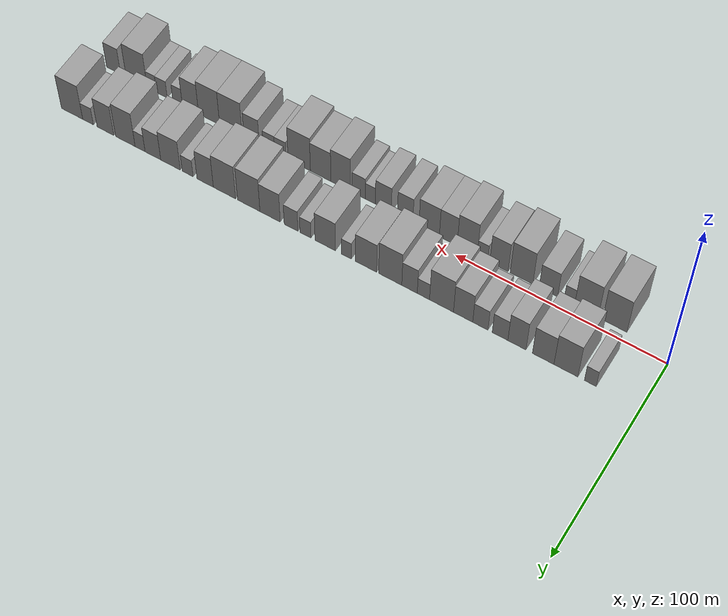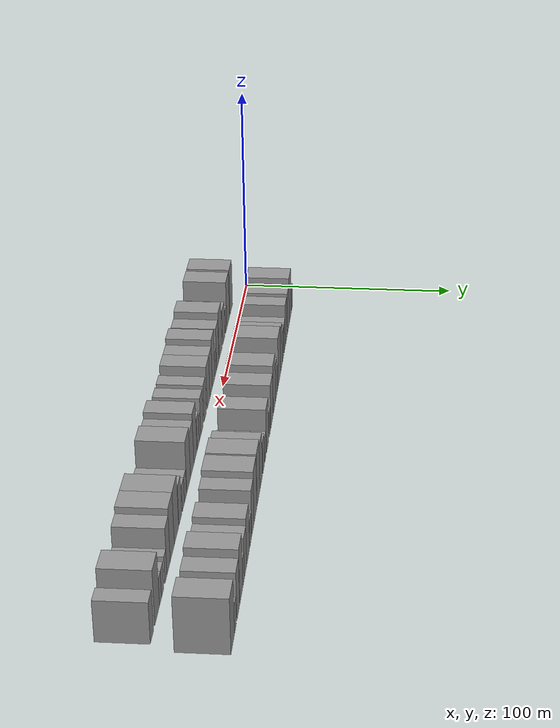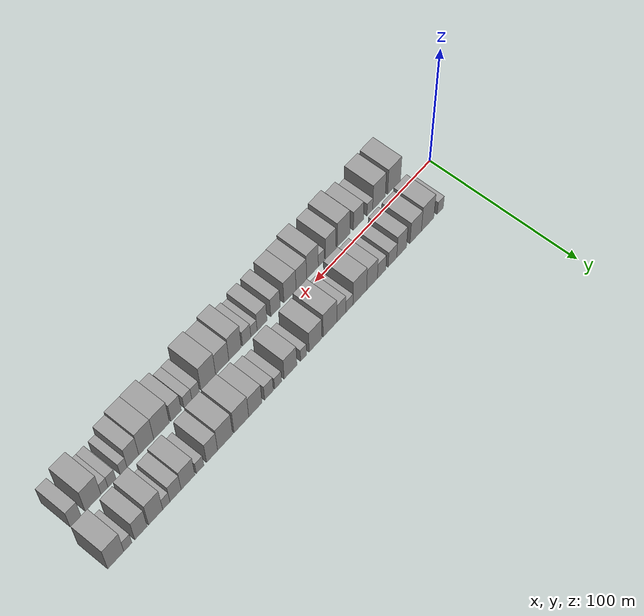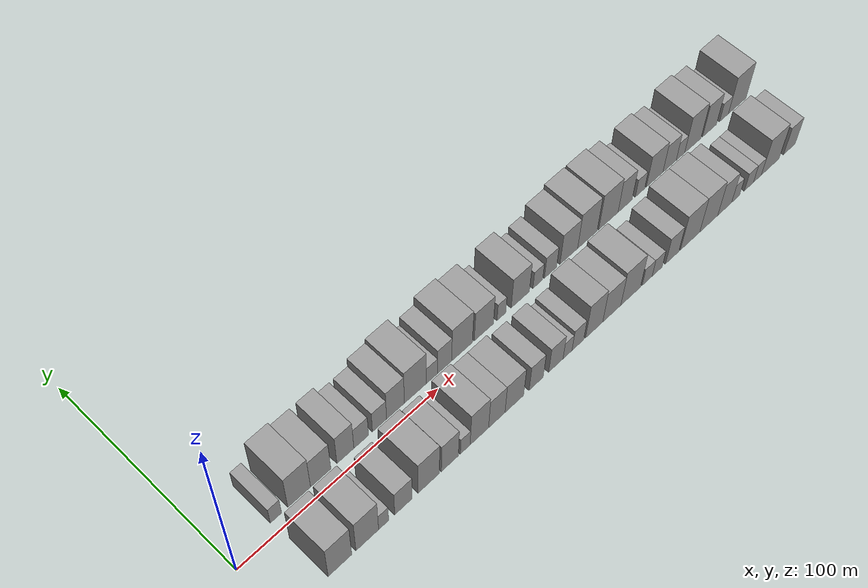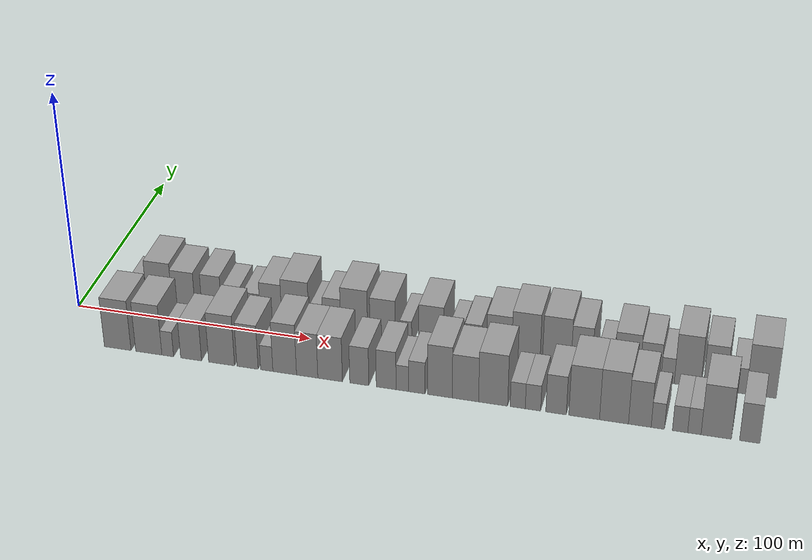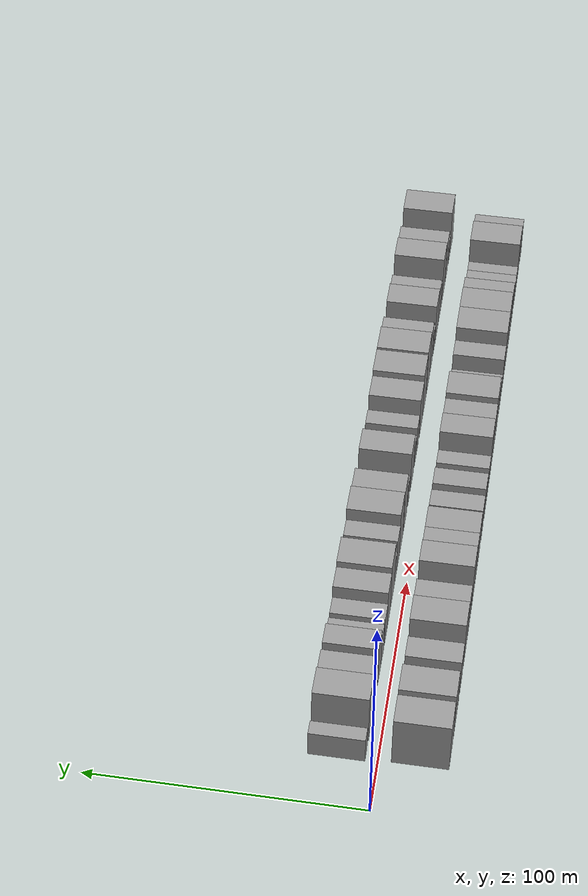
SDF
<sdf version="1.6">
 <world name="default">
  <scene>
   <sky><clouds><speed>12</speed></clouds></sky>
   <ambient>0.4 0.4 0.4 1</ambient>
   <background>0.7 0.7 0.7 1</background>
   <shadows>1</shadows>
  </scene>
  <gravity>0 0 -9.8066</gravity>
  <magnetic_field>6e-06 2.3e-05 -4.2e-05</magnetic_field>
  <physics default="0" name="default_physics" type="ode">
   <ode>
    <solver>
     <type>quick</type>
     <iters>10</iters>
     <sor>1.0</sor>
     <use_dynamic_moi_rescaling>0</use_dynamic_moi_rescaling>
    </solver>
    <constraints>
     <cfm>0</cfm>
     <erp>0.2</erp>
     <contact_max_correcting_vel>100</contact_max_correcting_vel>
     <contact_surface_layer>0.001</contact_surface_layer>
    </constraints>
   </ode>
   <max_step_size>0.004</max_step_size>
   <real_time_factor>1</real_time_factor>
   <real_time_update_rate>250</real_time_update_rate>
  </physics>
  <light name="sun" type="directional">
   <pose>0 0 10 0 0 0</pose>
   <diffuse>0.8 0.8 0.8 1</diffuse>
   <specular>0.2 0.2 0.2 1</specular>
   <attenuation>
    <range>1000</range>
    <constant>0.9</constant>
    <linear>0.01</linear>
    <quadratic>0.001</quadratic>
   </attenuation>
   <direction>-0.5 0.1 -0.9</direction>
  </light>
  <model name="building_1">
   <static>1</static>
   <pose>22.7182 14.5000 0 0.000000 0.000000 1.570796</pose>
   <link name="link">
    <pose>0 0 6.00 0 0 0</pose>
    <collision name="collision"><geometry><box><size>20.0000 5.4364 12.0000</size></box></geometry></collision>
    <visual name="visual">
     <cast_shadows>0</cast_shadows>
     <geometry><box><size>20.0000 5.4364 12.0000</size></box></geometry>
     <material>
      <script>
       <uri>model://grey_wall/materials/scripts</uri>
       <uri>model://grey_wall/materials/textures</uri>
       <name>vrc/grey_wall</name>
      </script>
     </material>
    </visual>
   </link>
  </model>
  <model name="building_2">
   <static>1</static>
   <pose>33.9652 14.5000 0 0.000000 0.000000 1.570796</pose>
   <link name="link">
    <pose>0 0 12.00 0 0 0</pose>
    <collision name="collision"><geometry><box><size>20.0000 11.0575 24.0000</size></box></geometry></collision>
    <visual name="visual">
     <cast_shadows>0</cast_shadows>
     <geometry><box><size>20.0000 11.0575 24.0000</size></box></geometry>
     <material>
      <script>
       <uri>model://grey_wall/materials/scripts</uri>
       <uri>model://grey_wall/materials/textures</uri>
       <name>vrc/grey_wall</name>
      </script>
     </material>
    </visual>
   </link>
  </model>
  <model name="building_3">
   <static>1</static>
   <pose>44.5014 14.5000 0 0.000000 0.000000 1.570796</pose>
   <link name="link">
    <pose>0 0 10.50 0 0 0</pose>
    <collision name="collision"><geometry><box><size>20.0000 10.0150 21.0000</size></box></geometry></collision>
    <visual name="visual">
     <cast_shadows>0</cast_shadows>
     <geometry><box><size>20.0000 10.0150 21.0000</size></box></geometry>
     <material>
      <script>
       <uri>model://grey_wall/materials/scripts</uri>
       <uri>model://grey_wall/materials/textures</uri>
       <name>vrc/grey_wall</name>
      </script>
     </material>
    </visual>
   </link>
  </model>
  <model name="building_4">
   <static>1</static>
   <pose>56.7607 14.5000 0 0.000000 0.000000 1.570796</pose>
   <link name="link">
    <pose>0 0 10.50 0 0 0</pose>
    <collision name="collision"><geometry><box><size>20.0000 8.5036 21.0000</size></box></geometry></collision>
    <visual name="visual">
     <cast_shadows>0</cast_shadows>
     <geometry><box><size>20.0000 8.5036 21.0000</size></box></geometry>
     <material>
      <script>
       <uri>model://grey_wall/materials/scripts</uri>
       <uri>model://grey_wall/materials/textures</uri>
       <name>vrc/grey_wall</name>
      </script>
     </material>
    </visual>
   </link>
  </model>
  <model name="building_5">
   <static>1</static>
   <pose>64.6994 14.5000 0 0.000000 0.000000 1.570796</pose>
   <link name="link">
    <pose>0 0 7.50 0 0 0</pose>
    <collision name="collision"><geometry><box><size>20.0000 7.3737 15.0000</size></box></geometry></collision>
    <visual name="visual">
     <cast_shadows>0</cast_shadows>
     <geometry><box><size>20.0000 7.3737 15.0000</size></box></geometry>
     <material>
      <script>
       <uri>model://grey_wall/materials/scripts</uri>
       <uri>model://grey_wall/materials/textures</uri>
       <name>vrc/grey_wall</name>
      </script>
     </material>
    </visual>
   </link>
  </model>
  <model name="building_6">
   <static>1</static>
   <pose>74.0015 14.5000 0 0.000000 0.000000 1.570796</pose>
   <link name="link">
    <pose>0 0 7.50 0 0 0</pose>
    <collision name="collision"><geometry><box><size>20.0000 7.2305 15.0000</size></box></geometry></collision>
    <visual name="visual">
     <cast_shadows>0</cast_shadows>
     <geometry><box><size>20.0000 7.2305 15.0000</size></box></geometry>
     <material>
      <script>
       <uri>model://grey_wall/materials/scripts</uri>
       <uri>model://grey_wall/materials/textures</uri>
       <name>vrc/grey_wall</name>
      </script>
     </material>
    </visual>
   </link>
  </model>
  <model name="building_7">
   <static>1</static>
   <pose>82.2014 14.5000 0 0.000000 0.000000 1.570796</pose>
   <link name="link">
    <pose>0 0 10.50 0 0 0</pose>
    <collision name="collision"><geometry><box><size>20.0000 9.1692 21.0000</size></box></geometry></collision>
    <visual name="visual">
     <cast_shadows>0</cast_shadows>
     <geometry><box><size>20.0000 9.1692 21.0000</size></box></geometry>
     <material>
      <script>
       <uri>model://grey_wall/materials/scripts</uri>
       <uri>model://grey_wall/materials/textures</uri>
       <name>vrc/grey_wall</name>
      </script>
     </material>
    </visual>
   </link>
  </model>
  <model name="building_8">
   <static>1</static>
   <pose>92.5418 14.5000 0 0.000000 0.000000 1.570796</pose>
   <link name="link">
    <pose>0 0 12.00 0 0 0</pose>
    <collision name="collision"><geometry><box><size>20.0000 11.5117 24.0000</size></box></geometry></collision>
    <visual name="visual">
     <cast_shadows>0</cast_shadows>
     <geometry><box><size>20.0000 11.5117 24.0000</size></box></geometry>
     <material>
      <script>
       <uri>model://grey_wall/materials/scripts</uri>
       <uri>model://grey_wall/materials/textures</uri>
       <name>vrc/grey_wall</name>
      </script>
     </material>
    </visual>
   </link>
  </model>
  <model name="building_9">
   <static>1</static>
   <pose>101.2591 14.5000 0 0.000000 0.000000 1.570796</pose>
   <link name="link">
    <pose>0 0 6.00 0 0 0</pose>
    <collision name="collision"><geometry><box><size>20.0000 5.9228 12.0000</size></box></geometry></collision>
    <visual name="visual">
     <cast_shadows>0</cast_shadows>
     <geometry><box><size>20.0000 5.9228 12.0000</size></box></geometry>
     <material>
      <script>
       <uri>model://grey_wall/materials/scripts</uri>
       <uri>model://grey_wall/materials/textures</uri>
       <name>vrc/grey_wall</name>
      </script>
     </material>
    </visual>
   </link>
  </model>
  <model name="building_10">
   <static>1</static>
   <pose>107.9694 14.5000 0 0.000000 0.000000 1.570796</pose>
   <link name="link">
    <pose>0 0 9.00 0 0 0</pose>
    <collision name="collision"><geometry><box><size>20.0000 7.4978 18.0000</size></box></geometry></collision>
    <visual name="visual">
     <cast_shadows>0</cast_shadows>
     <geometry><box><size>20.0000 7.4978 18.0000</size></box></geometry>
     <material>
      <script>
       <uri>model://grey_wall/materials/scripts</uri>
       <uri>model://grey_wall/materials/textures</uri>
       <name>vrc/grey_wall</name>
      </script>
     </material>
    </visual>
   </link>
  </model>
  <model name="building_11">
   <static>1</static>
   <pose>117.3433 14.5000 0 0.000000 0.000000 1.570796</pose>
   <link name="link">
    <pose>0 0 12.00 0 0 0</pose>
    <collision name="collision"><geometry><box><size>20.0000 11.2500 24.0000</size></box></geometry></collision>
    <visual name="visual">
     <cast_shadows>0</cast_shadows>
     <geometry><box><size>20.0000 11.2500 24.0000</size></box></geometry>
     <material>
      <script>
       <uri>model://grey_wall/materials/scripts</uri>
       <uri>model://grey_wall/materials/textures</uri>
       <name>vrc/grey_wall</name>
      </script>
     </material>
    </visual>
   </link>
  </model>
  <model name="building_12">
   <static>1</static>
   <pose>129.1996 14.5000 0 0.000000 0.000000 1.570796</pose>
   <link name="link">
    <pose>0 0 10.50 0 0 0</pose>
    <collision name="collision"><geometry><box><size>20.0000 10.4627 21.0000</size></box></geometry></collision>
    <visual name="visual">
     <cast_shadows>0</cast_shadows>
     <geometry><box><size>20.0000 10.4627 21.0000</size></box></geometry>
     <material>
      <script>
       <uri>model://grey_wall/materials/scripts</uri>
       <uri>model://grey_wall/materials/textures</uri>
       <name>vrc/grey_wall</name>
      </script>
     </material>
    </visual>
   </link>
  </model>
  <model name="building_13">
   <static>1</static>
   <pose>138.8574 14.5000 0 0.000000 0.000000 1.570796</pose>
   <link name="link">
    <pose>0 0 6.00 0 0 0</pose>
    <collision name="collision"><geometry><box><size>20.0000 4.8530 12.0000</size></box></geometry></collision>
    <visual name="visual">
     <cast_shadows>0</cast_shadows>
     <geometry><box><size>20.0000 4.8530 12.0000</size></box></geometry>
     <material>
      <script>
       <uri>model://grey_wall/materials/scripts</uri>
       <uri>model://grey_wall/materials/textures</uri>
       <name>vrc/grey_wall</name>
      </script>
     </material>
    </visual>
   </link>
  </model>
  <model name="building_14">
   <static>1</static>
   <pose>149.3889 14.5000 0 0.000000 0.000000 1.570796</pose>
   <link name="link">
    <pose>0 0 10.50 0 0 0</pose>
    <collision name="collision"><geometry><box><size>20.0000 10.2101 21.0000</size></box></geometry></collision>
    <visual name="visual">
     <cast_shadows>0</cast_shadows>
     <geometry><box><size>20.0000 10.2101 21.0000</size></box></geometry>
     <material>
      <script>
       <uri>model://grey_wall/materials/scripts</uri>
       <uri>model://grey_wall/materials/textures</uri>
       <name>vrc/grey_wall</name>
      </script>
     </material>
    </visual>
   </link>
  </model>
  <model name="building_15">
   <static>1</static>
   <pose>159.2584 14.5000 0 0.000000 0.000000 1.570796</pose>
   <link name="link">
    <pose>0 0 6.00 0 0 0</pose>
    <collision name="collision"><geometry><box><size>20.0000 5.5288 12.0000</size></box></geometry></collision>
    <visual name="visual">
     <cast_shadows>0</cast_shadows>
     <geometry><box><size>20.0000 5.5288 12.0000</size></box></geometry>
     <material>
      <script>
       <uri>model://grey_wall/materials/scripts</uri>
       <uri>model://grey_wall/materials/textures</uri>
       <name>vrc/grey_wall</name>
      </script>
     </material>
    </visual>
   </link>
  </model>
  <model name="building_16">
   <static>1</static>
   <pose>166.4911 14.5000 0 0.000000 0.000000 1.570796</pose>
   <link name="link">
    <pose>0 0 7.50 0 0 0</pose>
    <collision name="collision"><geometry><box><size>20.0000 6.9366 15.0000</size></box></geometry></collision>
    <visual name="visual">
     <cast_shadows>0</cast_shadows>
     <geometry><box><size>20.0000 6.9366 15.0000</size></box></geometry>
     <material>
      <script>
       <uri>model://grey_wall/materials/scripts</uri>
       <uri>model://grey_wall/materials/textures</uri>
       <name>vrc/grey_wall</name>
      </script>
     </material>
    </visual>
   </link>
  </model>
  <model name="building_17">
   <static>1</static>
   <pose>177.1055 14.5000 0 0.000000 0.000000 1.570796</pose>
   <link name="link">
    <pose>0 0 10.50 0 0 0</pose>
    <collision name="collision"><geometry><box><size>20.0000 10.2922 21.0000</size></box></geometry></collision>
    <visual name="visual">
     <cast_shadows>0</cast_shadows>
     <geometry><box><size>20.0000 10.2922 21.0000</size></box></geometry>
     <material>
      <script>
       <uri>model://grey_wall/materials/scripts</uri>
       <uri>model://grey_wall/materials/textures</uri>
       <name>vrc/grey_wall</name>
      </script>
     </material>
    </visual>
   </link>
  </model>
  <model name="building_18">
   <static>1</static>
   <pose>187.9631 14.5000 0 0.000000 0.000000 1.570796</pose>
   <link name="link">
    <pose>0 0 12.00 0 0 0</pose>
    <collision name="collision"><geometry><box><size>20.0000 11.4230 24.0000</size></box></geometry></collision>
    <visual name="visual">
     <cast_shadows>0</cast_shadows>
     <geometry><box><size>20.0000 11.4230 24.0000</size></box></geometry>
     <material>
      <script>
       <uri>model://grey_wall/materials/scripts</uri>
       <uri>model://grey_wall/materials/textures</uri>
       <name>vrc/grey_wall</name>
      </script>
     </material>
    </visual>
   </link>
  </model>
  <model name="building_19">
   <static>1</static>
   <pose>200.4035 14.5000 0 0.000000 0.000000 1.570796</pose>
   <link name="link">
    <pose>0 0 12.00 0 0 0</pose>
    <collision name="collision"><geometry><box><size>20.0000 11.4579 24.0000</size></box></geometry></collision>
    <visual name="visual">
     <cast_shadows>0</cast_shadows>
     <geometry><box><size>20.0000 11.4579 24.0000</size></box></geometry>
     <material>
      <script>
       <uri>model://grey_wall/materials/scripts</uri>
       <uri>model://grey_wall/materials/textures</uri>
       <name>vrc/grey_wall</name>
      </script>
     </material>
    </visual>
   </link>
  </model>
  <model name="building_20">
   <static>1</static>
   <pose>210.3536 14.5000 0 0.000000 0.000000 1.570796</pose>
   <link name="link">
    <pose>0 0 10.50 0 0 0</pose>
    <collision name="collision"><geometry><box><size>20.0000 8.4423 21.0000</size></box></geometry></collision>
    <visual name="visual">
     <cast_shadows>0</cast_shadows>
     <geometry><box><size>20.0000 8.4423 21.0000</size></box></geometry>
     <material>
      <script>
       <uri>model://grey_wall/materials/scripts</uri>
       <uri>model://grey_wall/materials/textures</uri>
       <name>vrc/grey_wall</name>
      </script>
     </material>
    </visual>
   </link>
  </model>
  <model name="building_21">
   <static>1</static>
   <pose>219.4221 14.5000 0 0.000000 0.000000 1.570796</pose>
   <link name="link">
    <pose>0 0 6.00 0 0 0</pose>
    <collision name="collision"><geometry><box><size>20.0000 5.6946 12.0000</size></box></geometry></collision>
    <visual name="visual">
     <cast_shadows>0</cast_shadows>
     <geometry><box><size>20.0000 5.6946 12.0000</size></box></geometry>
     <material>
      <script>
       <uri>model://grey_wall/materials/scripts</uri>
       <uri>model://grey_wall/materials/textures</uri>
       <name>vrc/grey_wall</name>
      </script>
     </material>
    </visual>
   </link>
  </model>
  <model name="building_22">
   <static>1</static>
   <pose>228.3806 14.5000 0 0.000000 0.000000 1.570796</pose>
   <link name="link">
    <pose>0 0 10.50 0 0 0</pose>
    <collision name="collision"><geometry><box><size>20.0000 10.2224 21.0000</size></box></geometry></collision>
    <visual name="visual">
     <cast_shadows>0</cast_shadows>
     <geometry><box><size>20.0000 10.2224 21.0000</size></box></geometry>
     <material>
      <script>
       <uri>model://grey_wall/materials/scripts</uri>
       <uri>model://grey_wall/materials/textures</uri>
       <name>vrc/grey_wall</name>
      </script>
     </material>
    </visual>
   </link>
  </model>
  <model name="building_23">
   <static>1</static>
   <pose>237.6218 14.5000 0 0.000000 0.000000 1.570796</pose>
   <link name="link">
    <pose>0 0 9.00 0 0 0</pose>
    <collision name="collision"><geometry><box><size>20.0000 8.2601 18.0000</size></box></geometry></collision>
    <visual name="visual">
     <cast_shadows>0</cast_shadows>
     <geometry><box><size>20.0000 8.2601 18.0000</size></box></geometry>
     <material>
      <script>
       <uri>model://grey_wall/materials/scripts</uri>
       <uri>model://grey_wall/materials/textures</uri>
       <name>vrc/grey_wall</name>
      </script>
     </material>
    </visual>
   </link>
  </model>
  <model name="building_24">
   <static>1</static>
   <pose>244.3933 14.5000 0 0.000000 0.000000 1.570796</pose>
   <link name="link">
    <pose>0 0 6.00 0 0 0</pose>
    <collision name="collision"><geometry><box><size>20.0000 5.2829 12.0000</size></box></geometry></collision>
    <visual name="visual">
     <cast_shadows>0</cast_shadows>
     <geometry><box><size>20.0000 5.2829 12.0000</size></box></geometry>
     <material>
      <script>
       <uri>model://grey_wall/materials/scripts</uri>
       <uri>model://grey_wall/materials/textures</uri>
       <name>vrc/grey_wall</name>
      </script>
     </material>
    </visual>
   </link>
  </model>
  <model name="building_25">
   <static>1</static>
   <pose>252.2038 14.5000 0 0.000000 0.000000 1.570796</pose>
   <link name="link">
    <pose>0 0 12.00 0 0 0</pose>
    <collision name="collision"><geometry><box><size>20.0000 10.3381 24.0000</size></box></geometry></collision>
    <visual name="visual">
     <cast_shadows>0</cast_shadows>
     <geometry><box><size>20.0000 10.3381 24.0000</size></box></geometry>
     <material>
      <script>
       <uri>model://grey_wall/materials/scripts</uri>
       <uri>model://grey_wall/materials/textures</uri>
       <name>vrc/grey_wall</name>
      </script>
     </material>
    </visual>
   </link>
  </model>
  <model name="building_26">
   <static>1</static>
   <pose>262.8360 14.5000 0 0.000000 0.000000 1.570796</pose>
   <link name="link">
    <pose>0 0 10.50 0 0 0</pose>
    <collision name="collision"><geometry><box><size>20.0000 8.9264 21.0000</size></box></geometry></collision>
    <visual name="visual">
     <cast_shadows>0</cast_shadows>
     <geometry><box><size>20.0000 8.9264 21.0000</size></box></geometry>
     <material>
      <script>
       <uri>model://grey_wall/materials/scripts</uri>
       <uri>model://grey_wall/materials/textures</uri>
       <name>vrc/grey_wall</name>
      </script>
     </material>
    </visual>
   </link>
  </model>
  <model name="building_27">
   <static>1</static>
   <pose>272.1711 14.5000 0 0.000000 0.000000 1.570796</pose>
   <link name="link">
    <pose>0 0 6.00 0 0 0</pose>
    <collision name="collision"><geometry><box><size>20.0000 5.7438 12.0000</size></box></geometry></collision>
    <visual name="visual">
     <cast_shadows>0</cast_shadows>
     <geometry><box><size>20.0000 5.7438 12.0000</size></box></geometry>
     <material>
      <script>
       <uri>model://grey_wall/materials/scripts</uri>
       <uri>model://grey_wall/materials/textures</uri>
       <name>vrc/grey_wall</name>
      </script>
     </material>
    </visual>
   </link>
  </model>
  <model name="building_28">
   <static>1</static>
   <pose>280.7774 14.5000 0 0.000000 0.000000 1.570796</pose>
   <link name="link">
    <pose>0 0 12.00 0 0 0</pose>
    <collision name="collision"><geometry><box><size>20.0000 11.4688 24.0000</size></box></geometry></collision>
    <visual name="visual">
     <cast_shadows>0</cast_shadows>
     <geometry><box><size>20.0000 11.4688 24.0000</size></box></geometry>
     <material>
      <script>
       <uri>model://grey_wall/materials/scripts</uri>
       <uri>model://grey_wall/materials/textures</uri>
       <name>vrc/grey_wall</name>
      </script>
     </material>
    </visual>
   </link>
  </model>
  <model name="building_29">
   <static>1</static>
   <pose>26.6897 -14.5000 0 0.000000 0.000000 1.570796</pose>
   <link name="link">
    <pose>0 0 12.00 0 0 0</pose>
    <collision name="collision"><geometry><box><size>20.0000 11.3794 24.0000</size></box></geometry></collision>
    <visual name="visual">
     <cast_shadows>0</cast_shadows>
     <geometry><box><size>20.0000 11.3794 24.0000</size></box></geometry>
     <material>
      <script>
       <uri>model://grey_wall/materials/scripts</uri>
       <uri>model://grey_wall/materials/textures</uri>
       <name>vrc/grey_wall</name>
      </script>
     </material>
    </visual>
   </link>
  </model>
  <model name="building_30">
   <static>1</static>
   <pose>39.9358 -14.5000 0 0.000000 0.000000 1.570796</pose>
   <link name="link">
    <pose>0 0 12.00 0 0 0</pose>
    <collision name="collision"><geometry><box><size>20.0000 11.1127 24.0000</size></box></geometry></collision>
    <visual name="visual">
     <cast_shadows>0</cast_shadows>
     <geometry><box><size>20.0000 11.1127 24.0000</size></box></geometry>
     <material>
      <script>
       <uri>model://grey_wall/materials/scripts</uri>
       <uri>model://grey_wall/materials/textures</uri>
       <name>vrc/grey_wall</name>
      </script>
     </material>
    </visual>
   </link>
  </model>
  <model name="building_31">
   <static>1</static>
   <pose>47.9693 -14.5000 0 0.000000 0.000000 1.570796</pose>
   <link name="link">
    <pose>0 0 6.00 0 0 0</pose>
    <collision name="collision"><geometry><box><size>20.0000 4.9542 12.0000</size></box></geometry></collision>
    <visual name="visual">
     <cast_shadows>0</cast_shadows>
     <geometry><box><size>20.0000 4.9542 12.0000</size></box></geometry>
     <material>
      <script>
       <uri>model://grey_wall/materials/scripts</uri>
       <uri>model://grey_wall/materials/textures</uri>
       <name>vrc/grey_wall</name>
      </script>
     </material>
    </visual>
   </link>
  </model>
  <model name="building_32">
   <static>1</static>
   <pose>57.8362 -14.5000 0 0.000000 0.000000 1.570796</pose>
   <link name="link">
    <pose>0 0 9.00 0 0 0</pose>
    <collision name="collision"><geometry><box><size>20.0000 8.7796 18.0000</size></box></geometry></collision>
    <visual name="visual">
     <cast_shadows>0</cast_shadows>
     <geometry><box><size>20.0000 8.7796 18.0000</size></box></geometry>
     <material>
      <script>
       <uri>model://grey_wall/materials/scripts</uri>
       <uri>model://grey_wall/materials/textures</uri>
       <name>vrc/grey_wall</name>
      </script>
     </material>
    </visual>
   </link>
  </model>
  <model name="building_33">
   <static>1</static>
   <pose>70.6332 -14.5000 0 0.000000 0.000000 1.570796</pose>
   <link name="link">
    <pose>0 0 12.00 0 0 0</pose>
    <collision name="collision"><geometry><box><size>20.0000 10.8144 24.0000</size></box></geometry></collision>
    <visual name="visual">
     <cast_shadows>0</cast_shadows>
     <geometry><box><size>20.0000 10.8144 24.0000</size></box></geometry>
     <material>
      <script>
       <uri>model://grey_wall/materials/scripts</uri>
       <uri>model://grey_wall/materials/textures</uri>
       <name>vrc/grey_wall</name>
      </script>
     </material>
    </visual>
   </link>
  </model>
  <model name="building_34">
   <static>1</static>
   <pose>81.4485 -14.5000 0 0.000000 0.000000 1.570796</pose>
   <link name="link">
    <pose>0 0 10.50 0 0 0</pose>
    <collision name="collision"><geometry><box><size>20.0000 8.8162 21.0000</size></box></geometry></collision>
    <visual name="visual">
     <cast_shadows>0</cast_shadows>
     <geometry><box><size>20.0000 8.8162 21.0000</size></box></geometry>
     <material>
      <script>
       <uri>model://grey_wall/materials/scripts</uri>
       <uri>model://grey_wall/materials/textures</uri>
       <name>vrc/grey_wall</name>
      </script>
     </material>
    </visual>
   </link>
  </model>
  <model name="building_35">
   <static>1</static>
   <pose>89.3932 -14.5000 0 0.000000 0.000000 1.570796</pose>
   <link name="link">
    <pose>0 0 6.00 0 0 0</pose>
    <collision name="collision"><geometry><box><size>20.0000 5.0730 12.0000</size></box></geometry></collision>
    <visual name="visual">
     <cast_shadows>0</cast_shadows>
     <geometry><box><size>20.0000 5.0730 12.0000</size></box></geometry>
     <material>
      <script>
       <uri>model://grey_wall/materials/scripts</uri>
       <uri>model://grey_wall/materials/textures</uri>
       <name>vrc/grey_wall</name>
      </script>
     </material>
    </visual>
   </link>
  </model>
  <model name="building_36">
   <static>1</static>
   <pose>96.8033 -14.5000 0 0.000000 0.000000 1.570796</pose>
   <link name="link">
    <pose>0 0 12.00 0 0 0</pose>
    <collision name="collision"><geometry><box><size>20.0000 9.7473 24.0000</size></box></geometry></collision>
    <visual name="visual">
     <cast_shadows>0</cast_shadows>
     <geometry><box><size>20.0000 9.7473 24.0000</size></box></geometry>
     <material>
      <script>
       <uri>model://grey_wall/materials/scripts</uri>
       <uri>model://grey_wall/materials/textures</uri>
       <name>vrc/grey_wall</name>
      </script>
     </material>
    </visual>
   </link>
  </model>
  <model name="building_37">
   <static>1</static>
   <pose>106.0414 -14.5000 0 0.000000 0.000000 1.570796</pose>
   <link name="link">
    <pose>0 0 10.50 0 0 0</pose>
    <collision name="collision"><geometry><box><size>20.0000 8.7288 21.0000</size></box></geometry></collision>
    <visual name="visual">
     <cast_shadows>0</cast_shadows>
     <geometry><box><size>20.0000 8.7288 21.0000</size></box></geometry>
     <material>
      <script>
       <uri>model://grey_wall/materials/scripts</uri>
       <uri>model://grey_wall/materials/textures</uri>
       <name>vrc/grey_wall</name>
      </script>
     </material>
    </visual>
   </link>
  </model>
  <model name="building_38">
   <static>1</static>
   <pose>115.4207 -14.5000 0 0.000000 0.000000 1.570796</pose>
   <link name="link">
    <pose>0 0 10.50 0 0 0</pose>
    <collision name="collision"><geometry><box><size>20.0000 10.0298 21.0000</size></box></geometry></collision>
    <visual name="visual">
     <cast_shadows>0</cast_shadows>
     <geometry><box><size>20.0000 10.0298 21.0000</size></box></geometry>
     <material>
      <script>
       <uri>model://grey_wall/materials/scripts</uri>
       <uri>model://grey_wall/materials/textures</uri>
       <name>vrc/grey_wall</name>
      </script>
     </material>
    </visual>
   </link>
  </model>
  <model name="building_39">
   <static>1</static>
   <pose>127.2897 -14.5000 0 0.000000 0.000000 1.570796</pose>
   <link name="link">
    <pose>0 0 9.00 0 0 0</pose>
    <collision name="collision"><geometry><box><size>20.0000 7.7082 18.0000</size></box></geometry></collision>
    <visual name="visual">
     <cast_shadows>0</cast_shadows>
     <geometry><box><size>20.0000 7.7082 18.0000</size></box></geometry>
     <material>
      <script>
       <uri>model://grey_wall/materials/scripts</uri>
       <uri>model://grey_wall/materials/textures</uri>
       <name>vrc/grey_wall</name>
      </script>
     </material>
    </visual>
   </link>
  </model>
  <model name="building_40">
   <static>1</static>
   <pose>138.1312 -14.5000 0 0.000000 0.000000 1.570796</pose>
   <link name="link">
    <pose>0 0 9.00 0 0 0</pose>
    <collision name="collision"><geometry><box><size>20.0000 7.9748 18.0000</size></box></geometry></collision>
    <visual name="visual">
     <cast_shadows>0</cast_shadows>
     <geometry><box><size>20.0000 7.9748 18.0000</size></box></geometry>
     <material>
      <script>
       <uri>model://grey_wall/materials/scripts</uri>
       <uri>model://grey_wall/materials/textures</uri>
       <name>vrc/grey_wall</name>
      </script>
     </material>
    </visual>
   </link>
  </model>
  <model name="building_41">
   <static>1</static>
   <pose>144.6062 -14.5000 0 0.000000 0.000000 1.570796</pose>
   <link name="link">
    <pose>0 0 6.00 0 0 0</pose>
    <collision name="collision"><geometry><box><size>20.0000 4.9752 12.0000</size></box></geometry></collision>
    <visual name="visual">
     <cast_shadows>0</cast_shadows>
     <geometry><box><size>20.0000 4.9752 12.0000</size></box></geometry>
     <material>
      <script>
       <uri>model://grey_wall/materials/scripts</uri>
       <uri>model://grey_wall/materials/textures</uri>
       <name>vrc/grey_wall</name>
      </script>
     </material>
    </visual>
   </link>
  </model>
  <model name="building_42">
   <static>1</static>
   <pose>150.4092 -14.5000 0 0.000000 0.000000 1.570796</pose>
   <link name="link">
    <pose>0 0 7.50 0 0 0</pose>
    <collision name="collision"><geometry><box><size>20.0000 6.6308 15.0000</size></box></geometry></collision>
    <visual name="visual">
     <cast_shadows>0</cast_shadows>
     <geometry><box><size>20.0000 6.6308 15.0000</size></box></geometry>
     <material>
      <script>
       <uri>model://grey_wall/materials/scripts</uri>
       <uri>model://grey_wall/materials/textures</uri>
       <name>vrc/grey_wall</name>
      </script>
     </material>
    </visual>
   </link>
  </model>
  <model name="building_43">
   <static>1</static>
   <pose>159.6194 -14.5000 0 0.000000 0.000000 1.570796</pose>
   <link name="link">
    <pose>0 0 12.00 0 0 0</pose>
    <collision name="collision"><geometry><box><size>20.0000 9.7895 24.0000</size></box></geometry></collision>
    <visual name="visual">
     <cast_shadows>0</cast_shadows>
     <geometry><box><size>20.0000 9.7895 24.0000</size></box></geometry>
     <material>
      <script>
       <uri>model://grey_wall/materials/scripts</uri>
       <uri>model://grey_wall/materials/textures</uri>
       <name>vrc/grey_wall</name>
      </script>
     </material>
    </visual>
   </link>
  </model>
  <model name="building_44">
   <static>1</static>
   <pose>169.7315 -14.5000 0 0.000000 0.000000 1.570796</pose>
   <link name="link">
    <pose>0 0 10.50 0 0 0</pose>
    <collision name="collision"><geometry><box><size>20.0000 10.4347 21.0000</size></box></geometry></collision>
    <visual name="visual">
     <cast_shadows>0</cast_shadows>
     <geometry><box><size>20.0000 10.4347 21.0000</size></box></geometry>
     <material>
      <script>
       <uri>model://grey_wall/materials/scripts</uri>
       <uri>model://grey_wall/materials/textures</uri>
       <name>vrc/grey_wall</name>
      </script>
     </material>
    </visual>
   </link>
  </model>
  <model name="building_45">
   <static>1</static>
   <pose>180.6727 -14.5000 0 0.000000 0.000000 1.570796</pose>
   <link name="link">
    <pose>0 0 12.00 0 0 0</pose>
    <collision name="collision"><geometry><box><size>20.0000 11.4477 24.0000</size></box></geometry></collision>
    <visual name="visual">
     <cast_shadows>0</cast_shadows>
     <geometry><box><size>20.0000 11.4477 24.0000</size></box></geometry>
     <material>
      <script>
       <uri>model://grey_wall/materials/scripts</uri>
       <uri>model://grey_wall/materials/textures</uri>
       <name>vrc/grey_wall</name>
      </script>
     </material>
    </visual>
   </link>
  </model>
  <model name="building_46">
   <static>1</static>
   <pose>190.3387 -14.5000 0 0.000000 0.000000 1.570796</pose>
   <link name="link">
    <pose>0 0 6.00 0 0 0</pose>
    <collision name="collision"><geometry><box><size>20.0000 5.8842 12.0000</size></box></geometry></collision>
    <visual name="visual">
     <cast_shadows>0</cast_shadows>
     <geometry><box><size>20.0000 5.8842 12.0000</size></box></geometry>
     <material>
      <script>
       <uri>model://grey_wall/materials/scripts</uri>
       <uri>model://grey_wall/materials/textures</uri>
       <name>vrc/grey_wall</name>
      </script>
     </material>
    </visual>
   </link>
  </model>
  <model name="building_47">
   <static>1</static>
   <pose>196.2774 -14.5000 0 0.000000 0.000000 1.570796</pose>
   <link name="link">
    <pose>0 0 6.00 0 0 0</pose>
    <collision name="collision"><geometry><box><size>20.0000 5.9932 12.0000</size></box></geometry></collision>
    <visual name="visual">
     <cast_shadows>0</cast_shadows>
     <geometry><box><size>20.0000 5.9932 12.0000</size></box></geometry>
     <material>
      <script>
       <uri>model://grey_wall/materials/scripts</uri>
       <uri>model://grey_wall/materials/textures</uri>
       <name>vrc/grey_wall</name>
      </script>
     </material>
    </visual>
   </link>
  </model>
  <model name="building_48">
   <static>1</static>
   <pose>205.2362 -14.5000 0 0.000000 0.000000 1.570796</pose>
   <link name="link">
    <pose>0 0 9.00 0 0 0</pose>
    <collision name="collision"><geometry><box><size>20.0000 7.9244 18.0000</size></box></geometry></collision>
    <visual name="visual">
     <cast_shadows>0</cast_shadows>
     <geometry><box><size>20.0000 7.9244 18.0000</size></box></geometry>
     <material>
      <script>
       <uri>model://grey_wall/materials/scripts</uri>
       <uri>model://grey_wall/materials/textures</uri>
       <name>vrc/grey_wall</name>
      </script>
     </material>
    </visual>
   </link>
  </model>
  <model name="building_49">
   <static>1</static>
   <pose>216.1049 -14.5000 0 0.000000 0.000000 1.570796</pose>
   <link name="link">
    <pose>0 0 12.00 0 0 0</pose>
    <collision name="collision"><geometry><box><size>20.0000 11.8129 24.0000</size></box></geometry></collision>
    <visual name="visual">
     <cast_shadows>0</cast_shadows>
     <geometry><box><size>20.0000 11.8129 24.0000</size></box></geometry>
     <material>
      <script>
       <uri>model://grey_wall/materials/scripts</uri>
       <uri>model://grey_wall/materials/textures</uri>
       <name>vrc/grey_wall</name>
      </script>
     </material>
    </visual>
   </link>
  </model>
  <model name="building_50">
   <static>1</static>
   <pose>227.5563 -14.5000 0 0.000000 0.000000 1.570796</pose>
   <link name="link">
    <pose>0 0 12.00 0 0 0</pose>
    <collision name="collision"><geometry><box><size>20.0000 11.0899 24.0000</size></box></geometry></collision>
    <visual name="visual">
     <cast_shadows>0</cast_shadows>
     <geometry><box><size>20.0000 11.0899 24.0000</size></box></geometry>
     <material>
      <script>
       <uri>model://grey_wall/materials/scripts</uri>
       <uri>model://grey_wall/materials/textures</uri>
       <name>vrc/grey_wall</name>
      </script>
     </material>
    </visual>
   </link>
  </model>
  <model name="building_51">
   <static>1</static>
   <pose>237.4233 -14.5000 0 0.000000 0.000000 1.570796</pose>
   <link name="link">
    <pose>0 0 10.50 0 0 0</pose>
    <collision name="collision"><geometry><box><size>20.0000 8.6441 21.0000</size></box></geometry></collision>
    <visual name="visual">
     <cast_shadows>0</cast_shadows>
     <geometry><box><size>20.0000 8.6441 21.0000</size></box></geometry>
     <material>
      <script>
       <uri>model://grey_wall/materials/scripts</uri>
       <uri>model://grey_wall/materials/textures</uri>
       <name>vrc/grey_wall</name>
      </script>
     </material>
    </visual>
   </link>
  </model>
  <model name="building_52">
   <static>1</static>
   <pose>244.2650 -14.5000 0 0.000000 0.000000 1.570796</pose>
   <link name="link">
    <pose>0 0 6.00 0 0 0</pose>
    <collision name="collision"><geometry><box><size>20.0000 5.0393 12.0000</size></box></geometry></collision>
    <visual name="visual">
     <cast_shadows>0</cast_shadows>
     <geometry><box><size>20.0000 5.0393 12.0000</size></box></geometry>
     <material>
      <script>
       <uri>model://grey_wall/materials/scripts</uri>
       <uri>model://grey_wall/materials/textures</uri>
       <name>vrc/grey_wall</name>
      </script>
     </material>
    </visual>
   </link>
  </model>
  <model name="building_53">
   <static>1</static>
   <pose>252.6608 -14.5000 0 0.000000 0.000000 1.570796</pose>
   <link name="link">
    <pose>0 0 6.00 0 0 0</pose>
    <collision name="collision"><geometry><box><size>20.0000 5.7524 12.0000</size></box></geometry></collision>
    <visual name="visual">
     <cast_shadows>0</cast_shadows>
     <geometry><box><size>20.0000 5.7524 12.0000</size></box></geometry>
     <material>
      <script>
       <uri>model://grey_wall/materials/scripts</uri>
       <uri>model://grey_wall/materials/textures</uri>
       <name>vrc/grey_wall</name>
      </script>
     </material>
    </visual>
   </link>
  </model>
  <model name="building_54">
   <static>1</static>
   <pose>258.0557 -14.5000 0 0.000000 0.000000 1.570796</pose>
   <link name="link">
    <pose>0 0 6.00 0 0 0</pose>
    <collision name="collision"><geometry><box><size>20.0000 5.0374 12.0000</size></box></geometry></collision>
    <visual name="visual">
     <cast_shadows>0</cast_shadows>
     <geometry><box><size>20.0000 5.0374 12.0000</size></box></geometry>
     <material>
      <script>
       <uri>model://grey_wall/materials/scripts</uri>
       <uri>model://grey_wall/materials/textures</uri>
       <name>vrc/grey_wall</name>
      </script>
     </material>
    </visual>
   </link>
  </model>
  <model name="building_55">
   <static>1</static>
   <pose>266.2636 -14.5000 0 0.000000 0.000000 1.570796</pose>
   <link name="link">
    <pose>0 0 12.00 0 0 0</pose>
    <collision name="collision"><geometry><box><size>20.0000 11.3784 24.0000</size></box></geometry></collision>
    <visual name="visual">
     <cast_shadows>0</cast_shadows>
     <geometry><box><size>20.0000 11.3784 24.0000</size></box></geometry>
     <material>
      <script>
       <uri>model://grey_wall/materials/scripts</uri>
       <uri>model://grey_wall/materials/textures</uri>
       <name>vrc/grey_wall</name>
      </script>
     </material>
    </visual>
   </link>
  </model>
  <model name="building_56">
   <static>1</static>
   <pose>278.7553 -14.5000 0 0.000000 0.000000 1.570796</pose>
   <link name="link">
    <pose>0 0 9.00 0 0 0</pose>
    <collision name="collision"><geometry><box><size>20.0000 7.6050 18.0000</size></box></geometry></collision>
    <visual name="visual">
     <cast_shadows>0</cast_shadows>
     <geometry><box><size>20.0000 7.6050 18.0000</size></box></geometry>
     <material>
      <script>
       <uri>model://grey_wall/materials/scripts</uri>
       <uri>model://grey_wall/materials/textures</uri>
       <name>vrc/grey_wall</name>
      </script>
     </material>
    </visual>
   </link>
  </model>
 </world>
</sdf>
